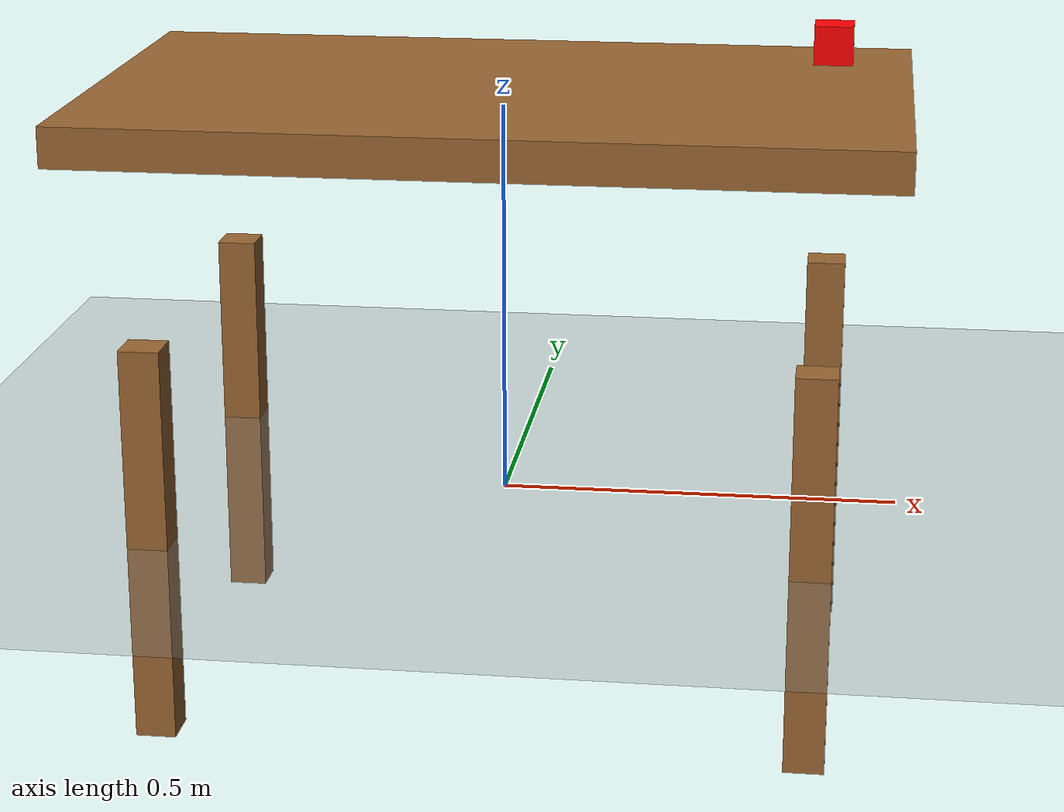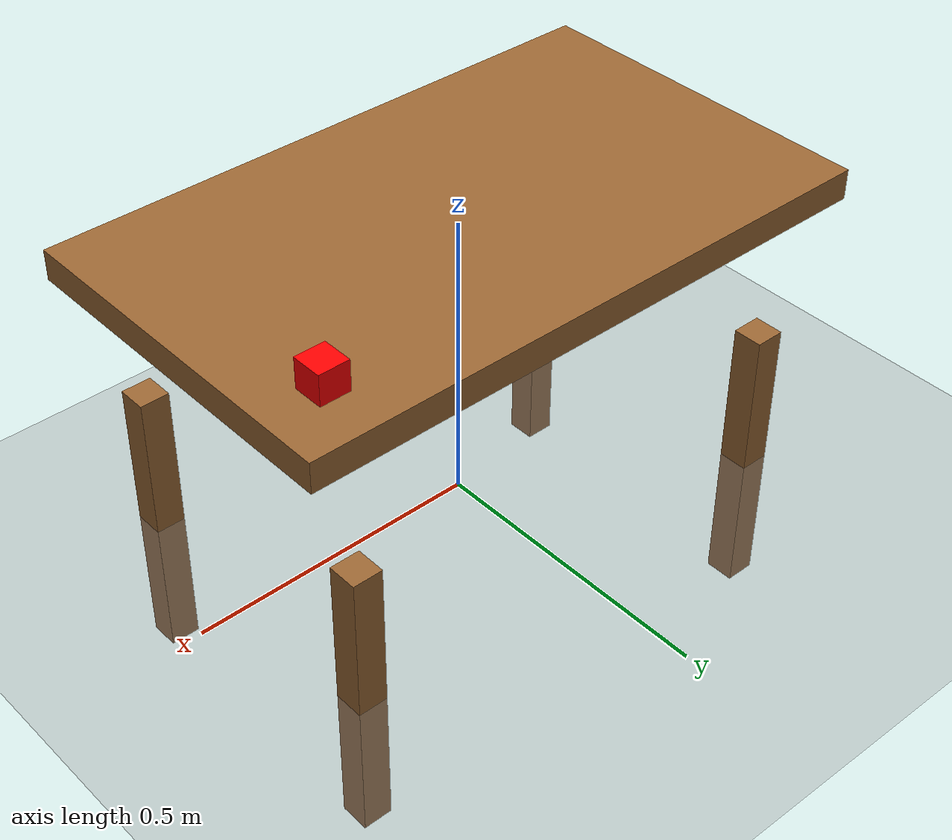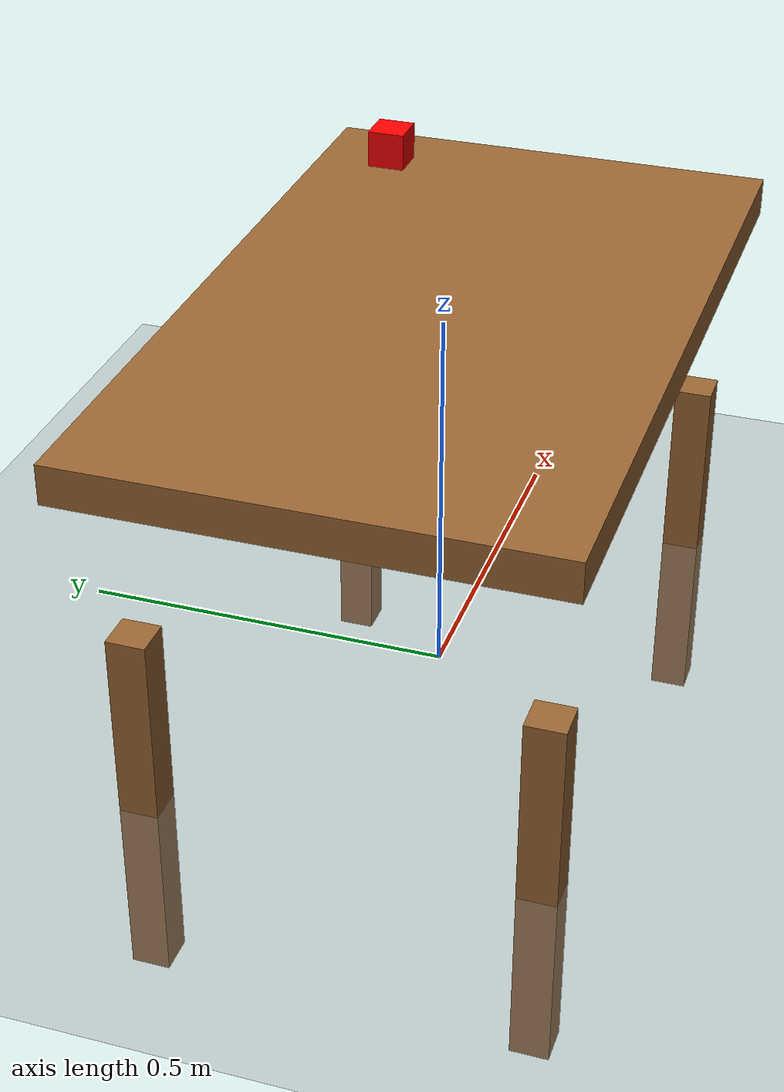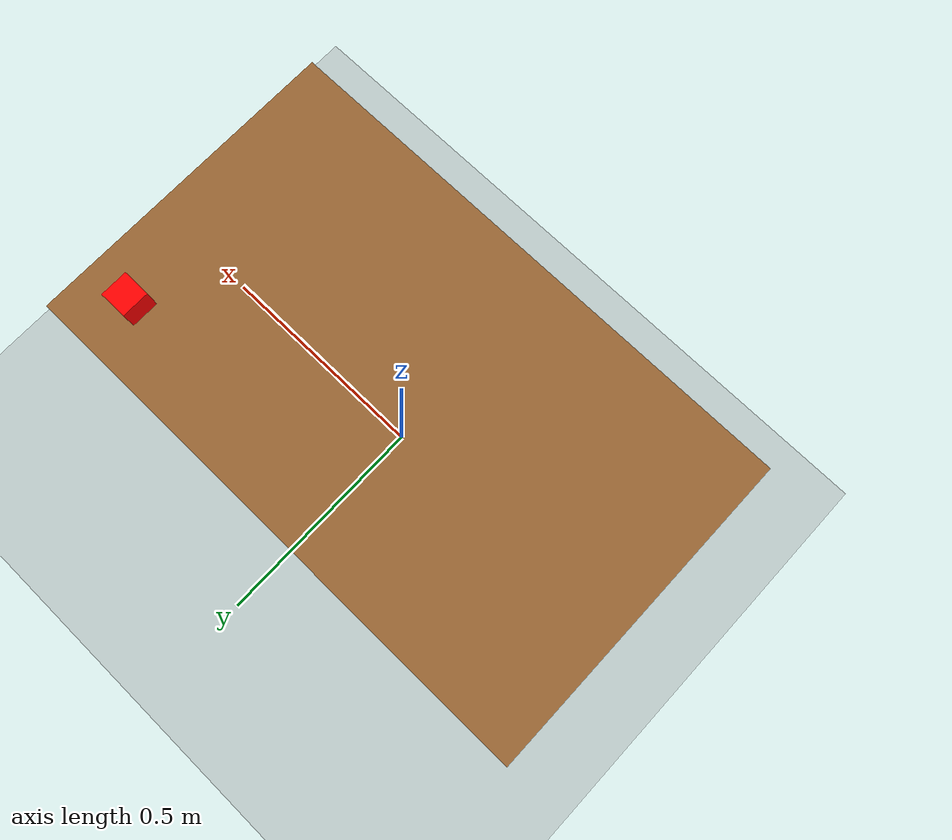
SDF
<?xml version="1.0" ?>
<sdf version="1.9">
  <world name="ur5_cell">

    <!-- Global light source -->
    <light name="sun" type="directional">
      <cast_shadows>true</cast_shadows>
      <pose>0 0 10 0 -1.5708 0</pose>
      <diffuse>0.8 0.8 0.8 1</diffuse>
      <specular>0.2 0.2 0.2 1</specular>
      <attenuation>
        <range>1000</range>
        <constant>0.9</constant>
        <linear>0.01</linear>
        <quadratic>0.001</quadratic>
      </attenuation>
    </light>

    <!-- Ground plane -->
    <model name="ground_plane">
      <static>true</static>
      <link name="link">
        <collision name="collision">
          <geometry>
            <plane>
              <normal>0 0 1</normal>
              <size>100 100</size>
            </plane>
          </geometry>
        </collision>
        <visual name="visual">
          <geometry>
            <plane>
              <normal>0 0 1</normal>
              <size>100 100</size>
            </plane>
          </geometry>
          <material>
            <ambient>0.5 0.5 0.5 1</ambient>
            <diffuse>0.5 0.5 0.5 1</diffuse>
            <specular>0.1 0.1 0.1 1</specular>
          </material>
        </visual>
      </link>
    </model>

    <!-- Table for UR5 mounting -->
    <model name="table">
      <static>true</static>
      <pose>0 0 0.5 0 0 0</pose>
      <link name="table_link">
        <collision name="table_collision">
          <pose>0 0 0 0 0 0</pose>
          <geometry>
            <box>
              <size>1.0 0.6 0.05</size>
            </box>
          </geometry>
        </collision>
        <visual name="table_visual">
          <pose>0 0 0 0 0 0</pose>
          <geometry>
            <box>
              <size>1.0 0.6 0.05</size>
            </box>
          </geometry>
          <material>
            <ambient>0.6 0.4 0.2 1</ambient>
            <diffuse>0.6 0.4 0.2 1</diffuse>
            <specular>0.1 0.1 0.1 1</specular>
          </material>
        </visual>
      </link>
      <link name="leg1">
        <static>true</static>
        <pose>-0.4 -0.25 -0.5 0 0 0</pose>
        <collision name="leg1_collision">
          <geometry>
            <box>
              <size>0.05 0.05 0.5</size>
            </box>
          </geometry>
        </collision>
        <visual name="leg1_visual">
          <geometry>
            <box>
              <size>0.05 0.05 0.5</size>
            </box>
          </geometry>
          <material>
            <ambient>0.6 0.4 0.2 1</ambient>
            <diffuse>0.6 0.4 0.2 1</diffuse>
            <specular>0.1 0.1 0.1 1</specular>
          </material>
        </visual>
      </link>
      <link name="leg2">
        <static>true</static>
        <pose>0.4 -0.25 -0.5 0 0 0</pose>
        <collision name="leg2_collision">
          <geometry>
            <box>
              <size>0.05 0.05 0.5</size>
            </box>
          </geometry>
        </collision>
        <visual name="leg2_visual">
          <geometry>
            <box>
              <size>0.05 0.05 0.5</size>
            </box>
          </geometry>
          <material>
            <ambient>0.6 0.4 0.2 1</ambient>
            <diffuse>0.6 0.4 0.2 1</diffuse>
            <specular>0.1 0.1 0.1 1</specular>
          </material>
        </visual>
      </link>
      <link name="leg3">
        <static>true</static>
        <pose>-0.4 0.25 -0.5 0 0 0</pose>
        <collision name="leg3_collision">
          <geometry>
            <box>
              <size>0.05 0.05 0.5</size>
            </box>
          </geometry>
        </collision>
        <visual name="leg3_visual">
          <geometry>
            <box>
              <size>0.05 0.05 0.5</size>
            </box>
          </geometry>
          <material>
            <ambient>0.6 0.4 0.2 1</ambient>
            <diffuse>0.6 0.4 0.2 1</diffuse>
            <specular>0.1 0.1 0.1 1</specular>
          </material>
        </visual>
      </link>
      <link name="leg4">
        <static>true</static>
        <pose>0.4 0.25 -0.5 0 0 0</pose>
        <collision name="leg4_collision">
          <geometry>
            <box>
              <size>0.05 0.05 0.5</size>
            </box>
          </geometry>
        </collision>
        <visual name="leg4_visual">
          <geometry>
            <box>
              <size>0.05 0.05 0.5</size>
            </box>
          </geometry>
          <material>
            <ambient>0.6 0.4 0.2 1</ambient>
            <diffuse>0.6 0.4 0.2 1</diffuse>
            <specular>0.1 0.1 0.1 1</specular>
          </material>
        </visual>
      </link>
    </model>

    <!-- Object to pick (red box) -->
    <model name="pick_object">
      <pose>0.4 0.2 0.55 0 0 0</pose>
      <link name="object_link">
        <collision name="object_collision">
          <geometry>
            <box>
              <size>0.05 0.05 0.05</size>
            </box>
          </geometry>
        </collision>
        <visual name="object_visual">
          <geometry>
            <box>
              <size>0.05 0.05 0.05</size>
            </box>
          </geometry>
          <material>
            <ambient>1 0 0 1</ambient>
            <diffuse>1 0 0 1</diffuse>
            <specular>0.5 0.5 0.5 1</specular>
          </material>
        </visual>
      </link>
    </model>

    <!-- Include plugins for ROS2 -->
    <plugin filename="gz_sim_system_plugins" name="gz::sim::systems::SimEvents">
    </plugin>

    <plugin filename="gz_sim_system_plugins" name="gz::sim::systems::UserCommands">
    </plugin>

    <plugin filename="gz_sim_system_plugins" name="gz::sim::systems::SceneBroadcaster">
    </plugin>

  </world>
</sdf>
